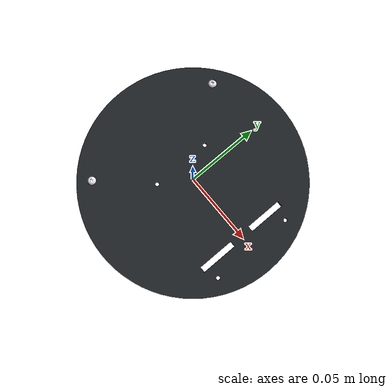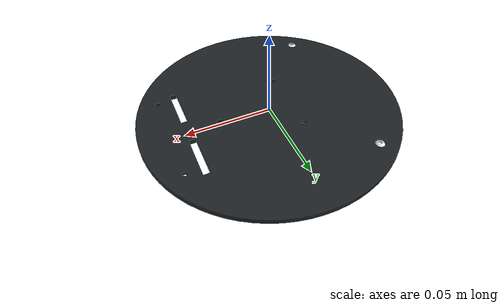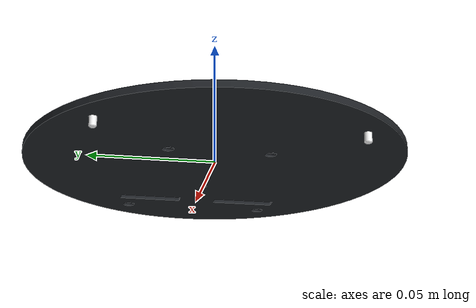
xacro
<?xml version="1.0" ?>
<robot xmlns:xacro="http://www.ros.org/wiki/xacro">

    <xacro:property name="base_floor3_m" value="0.0662765" />
    <xacro:property name="base_floor3_r" value="0.07500000" />
    <xacro:property name="base_floor3_h" value="0.00300000" />
    <xacro:property name="base_floor3_o_xyz" value="0 0 ${base_floor3_h / 2}" />
    <xacro:property name="base_floor3_o_rpy" value="0 0 0" />

    <!-- Link base_floor3 -->
    <link name="base_floor3">
        <xacro:cylinder_inertia m="${base_floor3_m}" r="${base_floor3_r}" h="${base_floor3_h}" o_xyz="${base_floor3_o_xyz}" o_rpy="${base_floor3_o_rpy}"/>

        <collision>
            <origin xyz="${base_floor3_o_xyz}" rpy="${base_floor3_o_rpy}"/>
            <geometry>
                <cylinder radius="${base_floor3_r}" length="${base_floor3_h}" />
            </geometry>
        </collision>

        <!-- Part base_floor_3 -->
        <visual>
            <origin xyz="0 0 0" rpy="0 -0 0"/>
            <geometry>
                <mesh filename="package://gizmo_description/meshes/base_floor_3.stl"/>
            </geometry>
            <material name="base_floor_3_material">
                <color rgba="0.121569 0.133333 0.14902 1"/>
            </material>
        </visual>

        <!-- Part bn_1593_1348663_hexagon_socket_button_head_screw_m3x6_13 -->
        <visual>
        <origin xyz="-0.0406106 -0.0507522 0.002" rpy="-0 1.5708 0"/>
        <geometry>
            <mesh filename="package://gizmo_description/meshes/bn_1593_1348663_hexagon_socket_button_head_screw_m3x6.stl"/>
        </geometry>
        <material name="bn_1593_1348663_hexagon_socket_button_head_screw_m3x6_13_material">
            <color rgba="0.941176 0.941176 0.941176 1"/>
        </material>
        </visual>

        <!-- Part bn_1593_1348663_hexagon_socket_button_head_screw_m3x6_14 -->
        <visual>
        <origin xyz="-0.0406106 0.0507522 0.002" rpy="-0 1.5708 0"/>
        <geometry>
            <mesh filename="package://gizmo_description/meshes/bn_1593_1348663_hexagon_socket_button_head_screw_m3x6.stl"/>
        </geometry>
        <material name="bn_1593_1348663_hexagon_socket_button_head_screw_m3x6_14_material">
            <color rgba="0.941176 0.941176 0.941176 1"/>
        </material>
        </visual>

    </link>
</robot>
